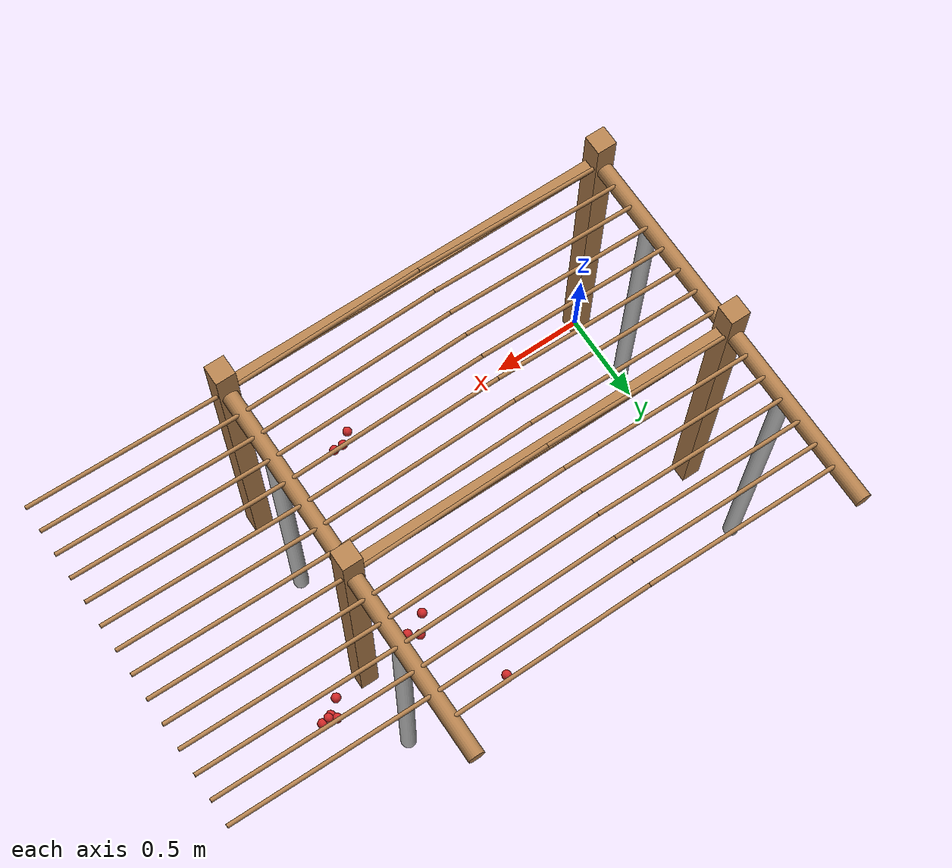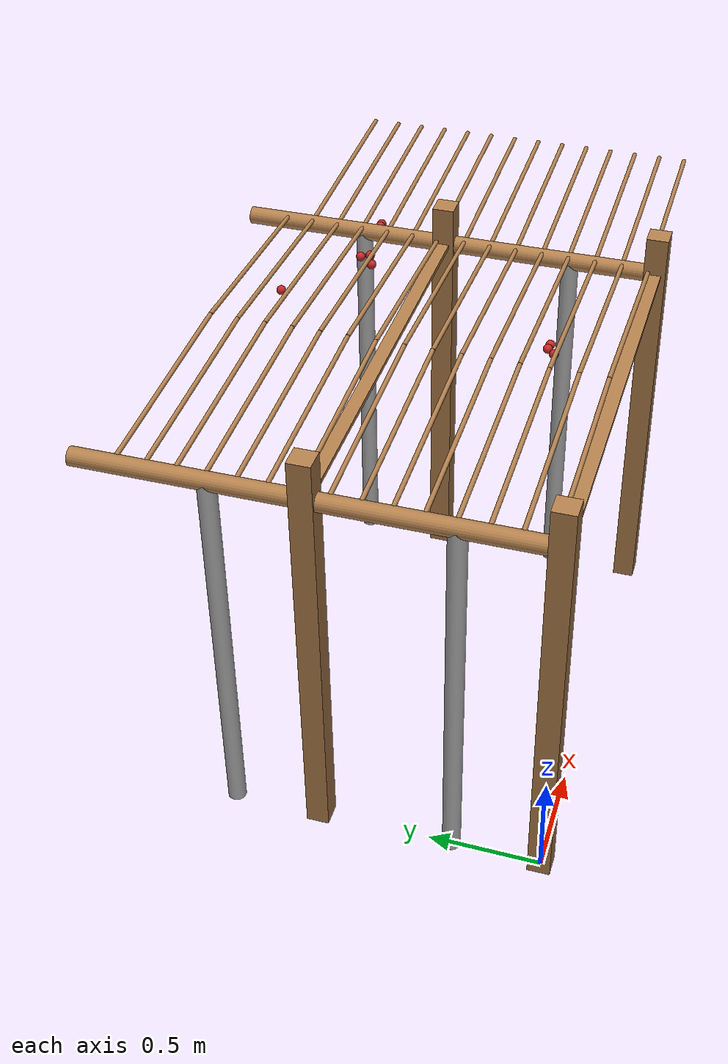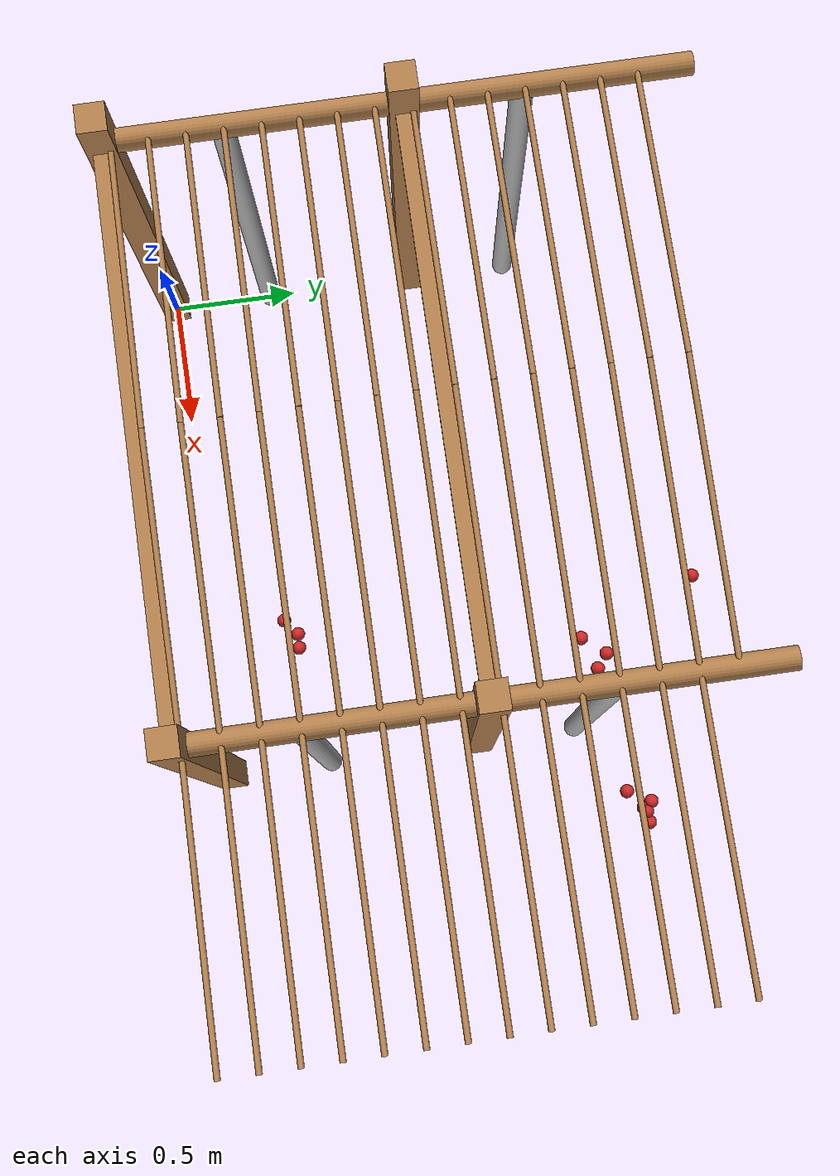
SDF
<sdf version="1.4">
 <model name="pergola">
  <include><name>post_0</name><uri>model://post</uri></include>
  <include><name>post_1</name><pose>0.0 1.0 0 0 0 0</pose><uri>model://post</uri></include>
  <include><name>post_7</name><pose>2.0 0.0 0 0 0 0</pose><uri>model://post</uri></include>
  <include><name>post_8</name><pose>2.0 1.0 0 0 0 0</pose><uri>model://post</uri></include>
  <link name="beam_0">
   <pose>1.0 0.0 1.81 0 0 0</pose>
   <collision name="collision"><geometry><box><size>2.0 0.06 0.02</size></box></geometry></collision>
   <visual name="visual">
    <geometry><box><size>2.0 0.06 0.02</size></box></geometry>
    <material><script><name>Gazebo/Wood</name></script></material>
   </visual>
   <inertial>
    <mass>5</mass>
    <inertia>
     <ixx>0.0016666666666666668</ixx>
     <ixy>0.0</ixy>
     <ixz>0.0</ixz>
     <iyy>1.6681666666666664</iyy>
     <iyz>0.0</iyz>
     <izz>1.6668333333333332</izz>
    </inertia>
   </inertial>
  </link>
  <link name="beam_1">
   <pose>1.0 1.0 1.81 0 0 0</pose>
   <collision name="collision"><geometry><box><size>2.0 0.06 0.02</size></box></geometry></collision>
   <visual name="visual">
    <geometry><box><size>2.0 0.06 0.02</size></box></geometry>
    <material><script><name>Gazebo/Wood</name></script></material>
   </visual>
   <inertial>
    <mass>5</mass>
    <inertia>
     <ixx>0.0016666666666666668</ixx>
     <ixy>0.0</ixy>
     <ixz>0.0</ixz>
     <iyy>1.6681666666666664</iyy>
     <iyz>0.0</iyz>
     <izz>1.6668333333333332</izz>
    </inertia>
   </inertial>
  </link>
  <include><name>tree_0</name><pose>0.0 0.4 0 0 0 0</pose><uri>model://tree_trunk</uri></include>
  <include><name>tree_1</name><pose>0.0 1.4 0 0 0 0</pose><uri>model://tree_trunk</uri></include>
  <include><name>tree_6</name><pose>2.0 0.4 0 0 0 0</pose><uri>model://tree_trunk</uri></include>
  <include><name>tree_7</name><pose>2.0 1.4 0 0 0 0</pose><uri>model://tree_trunk</uri></include>
  <link name="baseBranch_0">
   <pose>0.0 0.5 1.8 1.5707963267948966 0 0</pose>
   <collision name="collision">
    <geometry><cylinder><radius>0.04</radius><length>0.94</length></cylinder></geometry>
   </collision>
   <visual name="visual">
    <geometry><cylinder><radius>0.04</radius><length>0.94</length></cylinder></geometry>
    <material><script><name>Gazebo/WoodFloor</name></script></material>
   </visual>
   <inertial>
    <mass>10</mass>
    <inertia>
     <ixx>0.7403333333333334</ixx>
     <ixy>0.0</ixy>
     <ixz>0.0</ixz>
     <iyy>0.7403333333333334</iyy>
     <iyz>0.0</iyz>
     <izz>0.008</izz>
    </inertia>
   </inertial>
  </link>
  <link name="baseBranch_1">
   <pose>0.0 1.5 1.8 1.5707963267948966 0 0</pose>
   <collision name="collision">
    <geometry><cylinder><radius>0.04</radius><length>0.94</length></cylinder></geometry>
   </collision>
   <visual name="visual">
    <geometry><cylinder><radius>0.04</radius><length>0.94</length></cylinder></geometry>
    <material><script><name>Gazebo/WoodFloor</name></script></material>
   </visual>
   <inertial>
    <mass>10</mass>
    <inertia>
     <ixx>0.7403333333333334</ixx>
     <ixy>0.0</ixy>
     <ixz>0.0</ixz>
     <iyy>0.7403333333333334</iyy>
     <iyz>0.0</iyz>
     <izz>0.008</izz>
    </inertia>
   </inertial>
  </link>
  <link name="baseBranch_6">
   <pose>2.0 0.5 1.8 1.5707963267948966 0 0</pose>
   <collision name="collision">
    <geometry><cylinder><radius>0.04</radius><length>0.94</length></cylinder></geometry>
   </collision>
   <visual name="visual">
    <geometry><cylinder><radius>0.04</radius><length>0.94</length></cylinder></geometry>
    <material><script><name>Gazebo/WoodFloor</name></script></material>
   </visual>
   <inertial>
    <mass>10</mass>
    <inertia>
     <ixx>0.7403333333333334</ixx>
     <ixy>0.0</ixy>
     <ixz>0.0</ixz>
     <iyy>0.7403333333333334</iyy>
     <iyz>0.0</iyz>
     <izz>0.008</izz>
    </inertia>
   </inertial>
  </link>
  <link name="baseBranch_7">
   <pose>2.0 1.5 1.8 1.5707963267948966 0 0</pose>
   <collision name="collision">
    <geometry><cylinder><radius>0.04</radius><length>0.94</length></cylinder></geometry>
   </collision>
   <visual name="visual">
    <geometry><cylinder><radius>0.04</radius><length>0.94</length></cylinder></geometry>
    <material><script><name>Gazebo/WoodFloor</name></script></material>
   </visual>
   <inertial>
    <mass>10</mass>
    <inertia>
     <ixx>0.7403333333333334</ixx>
     <ixy>0.0</ixy>
     <ixz>0.0</ixz>
     <iyy>0.7403333333333334</iyy>
     <iyz>0.0</iyz>
     <izz>0.008</izz>
    </inertia>
   </inertial>
  </link>
  <link name="vine_0">
   <pose>0.5 0.03 1.85 0 1.5208379310729538 0</pose>
   <collision name="collision">
    <geometry><cylinder><radius>0.01</radius><length>1.0012492197250393</length></cylinder></geometry>
   </collision>
   <visual name="visual">
    <geometry><cylinder><radius>0.01</radius><length>1.0012492197250393</length></cylinder></geometry>
    <material><script><name>Gazebo/WoodFloor</name></script></material>
   </visual>
   <inertial>
    <mass>5</mass>
    <inertia>
     <ixx>0.41783333333333345</ixx>
     <ixy>0.0</ixy>
     <ixz>0.0</ixz>
     <iyy>0.41783333333333345</iyy>
     <iyz>0.0</iyz>
     <izz>0.00025</izz>
    </inertia>
   </inertial>
  </link>
  <link name="vine_1">
   <pose>1.5 0.03 1.85 0 -1.5208379310729538 0</pose>
   <collision name="collision">
    <geometry><cylinder><radius>0.01</radius><length>1.0012492197250393</length></cylinder></geometry>
   </collision>
   <visual name="visual">
    <geometry><cylinder><radius>0.01</radius><length>1.0012492197250393</length></cylinder></geometry>
    <material><script><name>Gazebo/WoodFloor</name></script></material>
   </visual>
   <inertial>
    <mass>5</mass>
    <inertia>
     <ixx>0.41783333333333345</ixx>
     <ixy>0.0</ixy>
     <ixz>0.0</ixz>
     <iyy>0.41783333333333345</iyy>
     <iyz>0.0</iyz>
     <izz>0.00025</izz>
    </inertia>
   </inertial>
  </link>
  <link name="vine_2">
   <pose>0.5 0.155 1.85 0 1.5208379310729538 0</pose>
   <collision name="collision">
    <geometry><cylinder><radius>0.01</radius><length>1.0012492197250393</length></cylinder></geometry>
   </collision>
   <visual name="visual">
    <geometry><cylinder><radius>0.01</radius><length>1.0012492197250393</length></cylinder></geometry>
    <material><script><name>Gazebo/WoodFloor</name></script></material>
   </visual>
   <inertial>
    <mass>5</mass>
    <inertia>
     <ixx>0.41783333333333345</ixx>
     <ixy>0.0</ixy>
     <ixz>0.0</ixz>
     <iyy>0.41783333333333345</iyy>
     <iyz>0.0</iyz>
     <izz>0.00025</izz>
    </inertia>
   </inertial>
  </link>
  <link name="vine_3">
   <pose>1.5 0.155 1.85 0 -1.5208379310729538 0</pose>
   <collision name="collision">
    <geometry><cylinder><radius>0.01</radius><length>1.0012492197250393</length></cylinder></geometry>
   </collision>
   <visual name="visual">
    <geometry><cylinder><radius>0.01</radius><length>1.0012492197250393</length></cylinder></geometry>
    <material><script><name>Gazebo/WoodFloor</name></script></material>
   </visual>
   <inertial>
    <mass>5</mass>
    <inertia>
     <ixx>0.41783333333333345</ixx>
     <ixy>0.0</ixy>
     <ixz>0.0</ixz>
     <iyy>0.41783333333333345</iyy>
     <iyz>0.0</iyz>
     <izz>0.00025</izz>
    </inertia>
   </inertial>
  </link>
  <link name="vine_4">
   <pose>0.5 0.28 1.85 0 1.5208379310729538 0</pose>
   <collision name="collision">
    <geometry><cylinder><radius>0.01</radius><length>1.0012492197250393</length></cylinder></geometry>
   </collision>
   <visual name="visual">
    <geometry><cylinder><radius>0.01</radius><length>1.0012492197250393</length></cylinder></geometry>
    <material><script><name>Gazebo/WoodFloor</name></script></material>
   </visual>
   <inertial>
    <mass>5</mass>
    <inertia>
     <ixx>0.41783333333333345</ixx>
     <ixy>0.0</ixy>
     <ixz>0.0</ixz>
     <iyy>0.41783333333333345</iyy>
     <iyz>0.0</iyz>
     <izz>0.00025</izz>
    </inertia>
   </inertial>
  </link>
  <link name="vine_5">
   <pose>1.5 0.28 1.85 0 -1.5208379310729538 0</pose>
   <collision name="collision">
    <geometry><cylinder><radius>0.01</radius><length>1.0012492197250393</length></cylinder></geometry>
   </collision>
   <visual name="visual">
    <geometry><cylinder><radius>0.01</radius><length>1.0012492197250393</length></cylinder></geometry>
    <material><script><name>Gazebo/WoodFloor</name></script></material>
   </visual>
   <inertial>
    <mass>5</mass>
    <inertia>
     <ixx>0.41783333333333345</ixx>
     <ixy>0.0</ixy>
     <ixz>0.0</ixz>
     <iyy>0.41783333333333345</iyy>
     <iyz>0.0</iyz>
     <izz>0.00025</izz>
    </inertia>
   </inertial>
  </link>
  <link name="vine_6">
   <pose>0.5 0.405 1.85 0 1.5208379310729538 0</pose>
   <collision name="collision">
    <geometry><cylinder><radius>0.01</radius><length>1.0012492197250393</length></cylinder></geometry>
   </collision>
   <visual name="visual">
    <geometry><cylinder><radius>0.01</radius><length>1.0012492197250393</length></cylinder></geometry>
    <material><script><name>Gazebo/WoodFloor</name></script></material>
   </visual>
   <inertial>
    <mass>5</mass>
    <inertia>
     <ixx>0.41783333333333345</ixx>
     <ixy>0.0</ixy>
     <ixz>0.0</ixz>
     <iyy>0.41783333333333345</iyy>
     <iyz>0.0</iyz>
     <izz>0.00025</izz>
    </inertia>
   </inertial>
  </link>
  <link name="vine_7">
   <pose>1.5 0.405 1.85 0 -1.5208379310729538 0</pose>
   <collision name="collision">
    <geometry><cylinder><radius>0.01</radius><length>1.0012492197250393</length></cylinder></geometry>
   </collision>
   <visual name="visual">
    <geometry><cylinder><radius>0.01</radius><length>1.0012492197250393</length></cylinder></geometry>
    <material><script><name>Gazebo/WoodFloor</name></script></material>
   </visual>
   <inertial>
    <mass>5</mass>
    <inertia>
     <ixx>0.41783333333333345</ixx>
     <ixy>0.0</ixy>
     <ixz>0.0</ixz>
     <iyy>0.41783333333333345</iyy>
     <iyz>0.0</iyz>
     <izz>0.00025</izz>
    </inertia>
   </inertial>
  </link>
  <link name="vine_8">
   <pose>0.5 0.53 1.85 0 1.5208379310729538 0</pose>
   <collision name="collision">
    <geometry><cylinder><radius>0.01</radius><length>1.0012492197250393</length></cylinder></geometry>
   </collision>
   <visual name="visual">
    <geometry><cylinder><radius>0.01</radius><length>1.0012492197250393</length></cylinder></geometry>
    <material><script><name>Gazebo/WoodFloor</name></script></material>
   </visual>
   <inertial>
    <mass>5</mass>
    <inertia>
     <ixx>0.41783333333333345</ixx>
     <ixy>0.0</ixy>
     <ixz>0.0</ixz>
     <iyy>0.41783333333333345</iyy>
     <iyz>0.0</iyz>
     <izz>0.00025</izz>
    </inertia>
   </inertial>
  </link>
  <link name="vine_9">
   <pose>1.5 0.53 1.85 0 -1.5208379310729538 0</pose>
   <collision name="collision">
    <geometry><cylinder><radius>0.01</radius><length>1.0012492197250393</length></cylinder></geometry>
   </collision>
   <visual name="visual">
    <geometry><cylinder><radius>0.01</radius><length>1.0012492197250393</length></cylinder></geometry>
    <material><script><name>Gazebo/WoodFloor</name></script></material>
   </visual>
   <inertial>
    <mass>5</mass>
    <inertia>
     <ixx>0.41783333333333345</ixx>
     <ixy>0.0</ixy>
     <ixz>0.0</ixz>
     <iyy>0.41783333333333345</iyy>
     <iyz>0.0</iyz>
     <izz>0.00025</izz>
    </inertia>
   </inertial>
  </link>
  <link name="vine_10">
   <pose>0.5 0.655 1.85 0 1.5208379310729538 0</pose>
   <collision name="collision">
    <geometry><cylinder><radius>0.01</radius><length>1.0012492197250393</length></cylinder></geometry>
   </collision>
   <visual name="visual">
    <geometry><cylinder><radius>0.01</radius><length>1.0012492197250393</length></cylinder></geometry>
    <material><script><name>Gazebo/WoodFloor</name></script></material>
   </visual>
   <inertial>
    <mass>5</mass>
    <inertia>
     <ixx>0.41783333333333345</ixx>
     <ixy>0.0</ixy>
     <ixz>0.0</ixz>
     <iyy>0.41783333333333345</iyy>
     <iyz>0.0</iyz>
     <izz>0.00025</izz>
    </inertia>
   </inertial>
  </link>
  <link name="vine_11">
   <pose>1.5 0.655 1.85 0 -1.5208379310729538 0</pose>
   <collision name="collision">
    <geometry><cylinder><radius>0.01</radius><length>1.0012492197250393</length></cylinder></geometry>
   </collision>
   <visual name="visual">
    <geometry><cylinder><radius>0.01</radius><length>1.0012492197250393</length></cylinder></geometry>
    <material><script><name>Gazebo/WoodFloor</name></script></material>
   </visual>
   <inertial>
    <mass>5</mass>
    <inertia>
     <ixx>0.41783333333333345</ixx>
     <ixy>0.0</ixy>
     <ixz>0.0</ixz>
     <iyy>0.41783333333333345</iyy>
     <iyz>0.0</iyz>
     <izz>0.00025</izz>
    </inertia>
   </inertial>
  </link>
  <link name="vine_12">
   <pose>0.5 0.78 1.85 0 1.5208379310729538 0</pose>
   <collision name="collision">
    <geometry><cylinder><radius>0.01</radius><length>1.0012492197250393</length></cylinder></geometry>
   </collision>
   <visual name="visual">
    <geometry><cylinder><radius>0.01</radius><length>1.0012492197250393</length></cylinder></geometry>
    <material><script><name>Gazebo/WoodFloor</name></script></material>
   </visual>
   <inertial>
    <mass>5</mass>
    <inertia>
     <ixx>0.41783333333333345</ixx>
     <ixy>0.0</ixy>
     <ixz>0.0</ixz>
     <iyy>0.41783333333333345</iyy>
     <iyz>0.0</iyz>
     <izz>0.00025</izz>
    </inertia>
   </inertial>
  </link>
  <link name="vine_13">
   <pose>1.5 0.78 1.85 0 -1.5208379310729538 0</pose>
   <collision name="collision">
    <geometry><cylinder><radius>0.01</radius><length>1.0012492197250393</length></cylinder></geometry>
   </collision>
   <visual name="visual">
    <geometry><cylinder><radius>0.01</radius><length>1.0012492197250393</length></cylinder></geometry>
    <material><script><name>Gazebo/WoodFloor</name></script></material>
   </visual>
   <inertial>
    <mass>5</mass>
    <inertia>
     <ixx>0.41783333333333345</ixx>
     <ixy>0.0</ixy>
     <ixz>0.0</ixz>
     <iyy>0.41783333333333345</iyy>
     <iyz>0.0</iyz>
     <izz>0.00025</izz>
    </inertia>
   </inertial>
  </link>
  <link name="vine_14">
   <pose>0.5 0.905 1.85 0 1.5208379310729538 0</pose>
   <collision name="collision">
    <geometry><cylinder><radius>0.01</radius><length>1.0012492197250393</length></cylinder></geometry>
   </collision>
   <visual name="visual">
    <geometry><cylinder><radius>0.01</radius><length>1.0012492197250393</length></cylinder></geometry>
    <material><script><name>Gazebo/WoodFloor</name></script></material>
   </visual>
   <inertial>
    <mass>5</mass>
    <inertia>
     <ixx>0.41783333333333345</ixx>
     <ixy>0.0</ixy>
     <ixz>0.0</ixz>
     <iyy>0.41783333333333345</iyy>
     <iyz>0.0</iyz>
     <izz>0.00025</izz>
    </inertia>
   </inertial>
  </link>
  <link name="vine_15">
   <pose>1.5 0.905 1.85 0 -1.5208379310729538 0</pose>
   <collision name="collision">
    <geometry><cylinder><radius>0.01</radius><length>1.0012492197250393</length></cylinder></geometry>
   </collision>
   <visual name="visual">
    <geometry><cylinder><radius>0.01</radius><length>1.0012492197250393</length></cylinder></geometry>
    <material><script><name>Gazebo/WoodFloor</name></script></material>
   </visual>
   <inertial>
    <mass>5</mass>
    <inertia>
     <ixx>0.41783333333333345</ixx>
     <ixy>0.0</ixy>
     <ixz>0.0</ixz>
     <iyy>0.41783333333333345</iyy>
     <iyz>0.0</iyz>
     <izz>0.00025</izz>
    </inertia>
   </inertial>
  </link>
  <link name="vine_16">
   <pose>0.5 1.03 1.85 0 1.5208379310729538 0</pose>
   <collision name="collision">
    <geometry><cylinder><radius>0.01</radius><length>1.0012492197250393</length></cylinder></geometry>
   </collision>
   <visual name="visual">
    <geometry><cylinder><radius>0.01</radius><length>1.0012492197250393</length></cylinder></geometry>
    <material><script><name>Gazebo/WoodFloor</name></script></material>
   </visual>
   <inertial>
    <mass>5</mass>
    <inertia>
     <ixx>0.41783333333333345</ixx>
     <ixy>0.0</ixy>
     <ixz>0.0</ixz>
     <iyy>0.41783333333333345</iyy>
     <iyz>0.0</iyz>
     <izz>0.00025</izz>
    </inertia>
   </inertial>
  </link>
  <link name="vine_17">
   <pose>1.5 1.03 1.85 0 -1.5208379310729538 0</pose>
   <collision name="collision">
    <geometry><cylinder><radius>0.01</radius><length>1.0012492197250393</length></cylinder></geometry>
   </collision>
   <visual name="visual">
    <geometry><cylinder><radius>0.01</radius><length>1.0012492197250393</length></cylinder></geometry>
    <material><script><name>Gazebo/WoodFloor</name></script></material>
   </visual>
   <inertial>
    <mass>5</mass>
    <inertia>
     <ixx>0.41783333333333345</ixx>
     <ixy>0.0</ixy>
     <ixz>0.0</ixz>
     <iyy>0.41783333333333345</iyy>
     <iyz>0.0</iyz>
     <izz>0.00025</izz>
    </inertia>
   </inertial>
  </link>
  <link name="vine_18">
   <pose>0.5 1.155 1.85 0 1.5208379310729538 0</pose>
   <collision name="collision">
    <geometry><cylinder><radius>0.01</radius><length>1.0012492197250393</length></cylinder></geometry>
   </collision>
   <visual name="visual">
    <geometry><cylinder><radius>0.01</radius><length>1.0012492197250393</length></cylinder></geometry>
    <material><script><name>Gazebo/WoodFloor</name></script></material>
   </visual>
   <inertial>
    <mass>5</mass>
    <inertia>
     <ixx>0.41783333333333345</ixx>
     <ixy>0.0</ixy>
     <ixz>0.0</ixz>
     <iyy>0.41783333333333345</iyy>
     <iyz>0.0</iyz>
     <izz>0.00025</izz>
    </inertia>
   </inertial>
  </link>
  <link name="vine_19">
   <pose>1.5 1.155 1.85 0 -1.5208379310729538 0</pose>
   <collision name="collision">
    <geometry><cylinder><radius>0.01</radius><length>1.0012492197250393</length></cylinder></geometry>
   </collision>
   <visual name="visual">
    <geometry><cylinder><radius>0.01</radius><length>1.0012492197250393</length></cylinder></geometry>
    <material><script><name>Gazebo/WoodFloor</name></script></material>
   </visual>
   <inertial>
    <mass>5</mass>
    <inertia>
     <ixx>0.41783333333333345</ixx>
     <ixy>0.0</ixy>
     <ixz>0.0</ixz>
     <iyy>0.41783333333333345</iyy>
     <iyz>0.0</iyz>
     <izz>0.00025</izz>
    </inertia>
   </inertial>
  </link>
  <link name="vine_20">
   <pose>0.5 1.28 1.85 0 1.5208379310729538 0</pose>
   <collision name="collision">
    <geometry><cylinder><radius>0.01</radius><length>1.0012492197250393</length></cylinder></geometry>
   </collision>
   <visual name="visual">
    <geometry><cylinder><radius>0.01</radius><length>1.0012492197250393</length></cylinder></geometry>
    <material><script><name>Gazebo/WoodFloor</name></script></material>
   </visual>
   <inertial>
    <mass>5</mass>
    <inertia>
     <ixx>0.41783333333333345</ixx>
     <ixy>0.0</ixy>
     <ixz>0.0</ixz>
     <iyy>0.41783333333333345</iyy>
     <iyz>0.0</iyz>
     <izz>0.00025</izz>
    </inertia>
   </inertial>
  </link>
  <link name="vine_21">
   <pose>1.5 1.28 1.85 0 -1.5208379310729538 0</pose>
   <collision name="collision">
    <geometry><cylinder><radius>0.01</radius><length>1.0012492197250393</length></cylinder></geometry>
   </collision>
   <visual name="visual">
    <geometry><cylinder><radius>0.01</radius><length>1.0012492197250393</length></cylinder></geometry>
    <material><script><name>Gazebo/WoodFloor</name></script></material>
   </visual>
   <inertial>
    <mass>5</mass>
    <inertia>
     <ixx>0.41783333333333345</ixx>
     <ixy>0.0</ixy>
     <ixz>0.0</ixz>
     <iyy>0.41783333333333345</iyy>
     <iyz>0.0</iyz>
     <izz>0.00025</izz>
    </inertia>
   </inertial>
  </link>
  <link name="vine_22">
   <pose>0.5 1.405 1.85 0 1.5208379310729538 0</pose>
   <collision name="collision">
    <geometry><cylinder><radius>0.01</radius><length>1.0012492197250393</length></cylinder></geometry>
   </collision>
   <visual name="visual">
    <geometry><cylinder><radius>0.01</radius><length>1.0012492197250393</length></cylinder></geometry>
    <material><script><name>Gazebo/WoodFloor</name></script></material>
   </visual>
   <inertial>
    <mass>5</mass>
    <inertia>
     <ixx>0.41783333333333345</ixx>
     <ixy>0.0</ixy>
     <ixz>0.0</ixz>
     <iyy>0.41783333333333345</iyy>
     <iyz>0.0</iyz>
     <izz>0.00025</izz>
    </inertia>
   </inertial>
  </link>
  <link name="vine_23">
   <pose>1.5 1.405 1.85 0 -1.5208379310729538 0</pose>
   <collision name="collision">
    <geometry><cylinder><radius>0.01</radius><length>1.0012492197250393</length></cylinder></geometry>
   </collision>
   <visual name="visual">
    <geometry><cylinder><radius>0.01</radius><length>1.0012492197250393</length></cylinder></geometry>
    <material><script><name>Gazebo/WoodFloor</name></script></material>
   </visual>
   <inertial>
    <mass>5</mass>
    <inertia>
     <ixx>0.41783333333333345</ixx>
     <ixy>0.0</ixy>
     <ixz>0.0</ixz>
     <iyy>0.41783333333333345</iyy>
     <iyz>0.0</iyz>
     <izz>0.00025</izz>
    </inertia>
   </inertial>
  </link>
  <link name="vine_24">
   <pose>0.5 1.53 1.85 0 1.5208379310729538 0</pose>
   <collision name="collision">
    <geometry><cylinder><radius>0.01</radius><length>1.0012492197250393</length></cylinder></geometry>
   </collision>
   <visual name="visual">
    <geometry><cylinder><radius>0.01</radius><length>1.0012492197250393</length></cylinder></geometry>
    <material><script><name>Gazebo/WoodFloor</name></script></material>
   </visual>
   <inertial>
    <mass>5</mass>
    <inertia>
     <ixx>0.41783333333333345</ixx>
     <ixy>0.0</ixy>
     <ixz>0.0</ixz>
     <iyy>0.41783333333333345</iyy>
     <iyz>0.0</iyz>
     <izz>0.00025</izz>
    </inertia>
   </inertial>
  </link>
  <link name="vine_25">
   <pose>1.5 1.53 1.85 0 -1.5208379310729538 0</pose>
   <collision name="collision">
    <geometry><cylinder><radius>0.01</radius><length>1.0012492197250393</length></cylinder></geometry>
   </collision>
   <visual name="visual">
    <geometry><cylinder><radius>0.01</radius><length>1.0012492197250393</length></cylinder></geometry>
    <material><script><name>Gazebo/WoodFloor</name></script></material>
   </visual>
   <inertial>
    <mass>5</mass>
    <inertia>
     <ixx>0.41783333333333345</ixx>
     <ixy>0.0</ixy>
     <ixz>0.0</ixz>
     <iyy>0.41783333333333345</iyy>
     <iyz>0.0</iyz>
     <izz>0.00025</izz>
    </inertia>
   </inertial>
  </link>
  <link name="vine_26">
   <pose>0.5 1.655 1.85 0 1.5208379310729538 0</pose>
   <collision name="collision">
    <geometry><cylinder><radius>0.01</radius><length>1.0012492197250393</length></cylinder></geometry>
   </collision>
   <visual name="visual">
    <geometry><cylinder><radius>0.01</radius><length>1.0012492197250393</length></cylinder></geometry>
    <material><script><name>Gazebo/WoodFloor</name></script></material>
   </visual>
   <inertial>
    <mass>5</mass>
    <inertia>
     <ixx>0.41783333333333345</ixx>
     <ixy>0.0</ixy>
     <ixz>0.0</ixz>
     <iyy>0.41783333333333345</iyy>
     <iyz>0.0</iyz>
     <izz>0.00025</izz>
    </inertia>
   </inertial>
  </link>
  <link name="vine_27">
   <pose>1.5 1.655 1.85 0 -1.5208379310729538 0</pose>
   <collision name="collision">
    <geometry><cylinder><radius>0.01</radius><length>1.0012492197250393</length></cylinder></geometry>
   </collision>
   <visual name="visual">
    <geometry><cylinder><radius>0.01</radius><length>1.0012492197250393</length></cylinder></geometry>
    <material><script><name>Gazebo/WoodFloor</name></script></material>
   </visual>
   <inertial>
    <mass>5</mass>
    <inertia>
     <ixx>0.41783333333333345</ixx>
     <ixy>0.0</ixy>
     <ixz>0.0</ixz>
     <iyy>0.41783333333333345</iyy>
     <iyz>0.0</iyz>
     <izz>0.00025</izz>
    </inertia>
   </inertial>
  </link>
  <link name="vine_28">
   <pose>0.5 1.78 1.85 0 1.5208379310729538 0</pose>
   <collision name="collision">
    <geometry><cylinder><radius>0.01</radius><length>1.0012492197250393</length></cylinder></geometry>
   </collision>
   <visual name="visual">
    <geometry><cylinder><radius>0.01</radius><length>1.0012492197250393</length></cylinder></geometry>
    <material><script><name>Gazebo/WoodFloor</name></script></material>
   </visual>
   <inertial>
    <mass>5</mass>
    <inertia>
     <ixx>0.41783333333333345</ixx>
     <ixy>0.0</ixy>
     <ixz>0.0</ixz>
     <iyy>0.41783333333333345</iyy>
     <iyz>0.0</iyz>
     <izz>0.00025</izz>
    </inertia>
   </inertial>
  </link>
  <link name="vine_29">
   <pose>1.5 1.78 1.85 0 -1.5208379310729538 0</pose>
   <collision name="collision">
    <geometry><cylinder><radius>0.01</radius><length>1.0012492197250393</length></cylinder></geometry>
   </collision>
   <visual name="visual">
    <geometry><cylinder><radius>0.01</radius><length>1.0012492197250393</length></cylinder></geometry>
    <material><script><name>Gazebo/WoodFloor</name></script></material>
   </visual>
   <inertial>
    <mass>5</mass>
    <inertia>
     <ixx>0.41783333333333345</ixx>
     <ixy>0.0</ixy>
     <ixz>0.0</ixz>
     <iyy>0.41783333333333345</iyy>
     <iyz>0.0</iyz>
     <izz>0.00025</izz>
    </inertia>
   </inertial>
  </link>
  <link name="vine_96">
   <pose>2.5 0.03 1.85 0 1.5208379310729538 0</pose>
   <collision name="collision">
    <geometry><cylinder><radius>0.01</radius><length>1.0012492197250393</length></cylinder></geometry>
   </collision>
   <visual name="visual">
    <geometry><cylinder><radius>0.01</radius><length>1.0012492197250393</length></cylinder></geometry>
    <material><script><name>Gazebo/WoodFloor</name></script></material>
   </visual>
   <inertial>
    <mass>5</mass>
    <inertia>
     <ixx>0.41783333333333345</ixx>
     <ixy>0.0</ixy>
     <ixz>0.0</ixz>
     <iyy>0.41783333333333345</iyy>
     <iyz>0.0</iyz>
     <izz>0.00025</izz>
    </inertia>
   </inertial>
  </link>
  <link name="vine_98">
   <pose>2.5 0.155 1.85 0 1.5208379310729538 0</pose>
   <collision name="collision">
    <geometry><cylinder><radius>0.01</radius><length>1.0012492197250393</length></cylinder></geometry>
   </collision>
   <visual name="visual">
    <geometry><cylinder><radius>0.01</radius><length>1.0012492197250393</length></cylinder></geometry>
    <material><script><name>Gazebo/WoodFloor</name></script></material>
   </visual>
   <inertial>
    <mass>5</mass>
    <inertia>
     <ixx>0.41783333333333345</ixx>
     <ixy>0.0</ixy>
     <ixz>0.0</ixz>
     <iyy>0.41783333333333345</iyy>
     <iyz>0.0</iyz>
     <izz>0.00025</izz>
    </inertia>
   </inertial>
  </link>
  <link name="vine_100">
   <pose>2.5 0.28 1.85 0 1.5208379310729538 0</pose>
   <collision name="collision">
    <geometry><cylinder><radius>0.01</radius><length>1.0012492197250393</length></cylinder></geometry>
   </collision>
   <visual name="visual">
    <geometry><cylinder><radius>0.01</radius><length>1.0012492197250393</length></cylinder></geometry>
    <material><script><name>Gazebo/WoodFloor</name></script></material>
   </visual>
   <inertial>
    <mass>5</mass>
    <inertia>
     <ixx>0.41783333333333345</ixx>
     <ixy>0.0</ixy>
     <ixz>0.0</ixz>
     <iyy>0.41783333333333345</iyy>
     <iyz>0.0</iyz>
     <izz>0.00025</izz>
    </inertia>
   </inertial>
  </link>
  <link name="vine_102">
   <pose>2.5 0.405 1.85 0 1.5208379310729538 0</pose>
   <collision name="collision">
    <geometry><cylinder><radius>0.01</radius><length>1.0012492197250393</length></cylinder></geometry>
   </collision>
   <visual name="visual">
    <geometry><cylinder><radius>0.01</radius><length>1.0012492197250393</length></cylinder></geometry>
    <material><script><name>Gazebo/WoodFloor</name></script></material>
   </visual>
   <inertial>
    <mass>5</mass>
    <inertia>
     <ixx>0.41783333333333345</ixx>
     <ixy>0.0</ixy>
     <ixz>0.0</ixz>
     <iyy>0.41783333333333345</iyy>
     <iyz>0.0</iyz>
     <izz>0.00025</izz>
    </inertia>
   </inertial>
  </link>
  <link name="vine_104">
   <pose>2.5 0.53 1.85 0 1.5208379310729538 0</pose>
   <collision name="collision">
    <geometry><cylinder><radius>0.01</radius><length>1.0012492197250393</length></cylinder></geometry>
   </collision>
   <visual name="visual">
    <geometry><cylinder><radius>0.01</radius><length>1.0012492197250393</length></cylinder></geometry>
    <material><script><name>Gazebo/WoodFloor</name></script></material>
   </visual>
   <inertial>
    <mass>5</mass>
    <inertia>
     <ixx>0.41783333333333345</ixx>
     <ixy>0.0</ixy>
     <ixz>0.0</ixz>
     <iyy>0.41783333333333345</iyy>
     <iyz>0.0</iyz>
     <izz>0.00025</izz>
    </inertia>
   </inertial>
  </link>
  <link name="vine_106">
   <pose>2.5 0.655 1.85 0 1.5208379310729538 0</pose>
   <collision name="collision">
    <geometry><cylinder><radius>0.01</radius><length>1.0012492197250393</length></cylinder></geometry>
   </collision>
   <visual name="visual">
    <geometry><cylinder><radius>0.01</radius><length>1.0012492197250393</length></cylinder></geometry>
    <material><script><name>Gazebo/WoodFloor</name></script></material>
   </visual>
   <inertial>
    <mass>5</mass>
    <inertia>
     <ixx>0.41783333333333345</ixx>
     <ixy>0.0</ixy>
     <ixz>0.0</ixz>
     <iyy>0.41783333333333345</iyy>
     <iyz>0.0</iyz>
     <izz>0.00025</izz>
    </inertia>
   </inertial>
  </link>
  <link name="vine_108">
   <pose>2.5 0.78 1.85 0 1.5208379310729538 0</pose>
   <collision name="collision">
    <geometry><cylinder><radius>0.01</radius><length>1.0012492197250393</length></cylinder></geometry>
   </collision>
   <visual name="visual">
    <geometry><cylinder><radius>0.01</radius><length>1.0012492197250393</length></cylinder></geometry>
    <material><script><name>Gazebo/WoodFloor</name></script></material>
   </visual>
   <inertial>
    <mass>5</mass>
    <inertia>
     <ixx>0.41783333333333345</ixx>
     <ixy>0.0</ixy>
     <ixz>0.0</ixz>
     <iyy>0.41783333333333345</iyy>
     <iyz>0.0</iyz>
     <izz>0.00025</izz>
    </inertia>
   </inertial>
  </link>
  <link name="vine_110">
   <pose>2.5 0.905 1.85 0 1.5208379310729538 0</pose>
   <collision name="collision">
    <geometry><cylinder><radius>0.01</radius><length>1.0012492197250393</length></cylinder></geometry>
   </collision>
   <visual name="visual">
    <geometry><cylinder><radius>0.01</radius><length>1.0012492197250393</length></cylinder></geometry>
    <material><script><name>Gazebo/WoodFloor</name></script></material>
   </visual>
   <inertial>
    <mass>5</mass>
    <inertia>
     <ixx>0.41783333333333345</ixx>
     <ixy>0.0</ixy>
     <ixz>0.0</ixz>
     <iyy>0.41783333333333345</iyy>
     <iyz>0.0</iyz>
     <izz>0.00025</izz>
    </inertia>
   </inertial>
  </link>
  <link name="vine_112">
   <pose>2.5 1.03 1.85 0 1.5208379310729538 0</pose>
   <collision name="collision">
    <geometry><cylinder><radius>0.01</radius><length>1.0012492197250393</length></cylinder></geometry>
   </collision>
   <visual name="visual">
    <geometry><cylinder><radius>0.01</radius><length>1.0012492197250393</length></cylinder></geometry>
    <material><script><name>Gazebo/WoodFloor</name></script></material>
   </visual>
   <inertial>
    <mass>5</mass>
    <inertia>
     <ixx>0.41783333333333345</ixx>
     <ixy>0.0</ixy>
     <ixz>0.0</ixz>
     <iyy>0.41783333333333345</iyy>
     <iyz>0.0</iyz>
     <izz>0.00025</izz>
    </inertia>
   </inertial>
  </link>
  <link name="vine_114">
   <pose>2.5 1.155 1.85 0 1.5208379310729538 0</pose>
   <collision name="collision">
    <geometry><cylinder><radius>0.01</radius><length>1.0012492197250393</length></cylinder></geometry>
   </collision>
   <visual name="visual">
    <geometry><cylinder><radius>0.01</radius><length>1.0012492197250393</length></cylinder></geometry>
    <material><script><name>Gazebo/WoodFloor</name></script></material>
   </visual>
   <inertial>
    <mass>5</mass>
    <inertia>
     <ixx>0.41783333333333345</ixx>
     <ixy>0.0</ixy>
     <ixz>0.0</ixz>
     <iyy>0.41783333333333345</iyy>
     <iyz>0.0</iyz>
     <izz>0.00025</izz>
    </inertia>
   </inertial>
  </link>
  <link name="vine_116">
   <pose>2.5 1.28 1.85 0 1.5208379310729538 0</pose>
   <collision name="collision">
    <geometry><cylinder><radius>0.01</radius><length>1.0012492197250393</length></cylinder></geometry>
   </collision>
   <visual name="visual">
    <geometry><cylinder><radius>0.01</radius><length>1.0012492197250393</length></cylinder></geometry>
    <material><script><name>Gazebo/WoodFloor</name></script></material>
   </visual>
   <inertial>
    <mass>5</mass>
    <inertia>
     <ixx>0.41783333333333345</ixx>
     <ixy>0.0</ixy>
     <ixz>0.0</ixz>
     <iyy>0.41783333333333345</iyy>
     <iyz>0.0</iyz>
     <izz>0.00025</izz>
    </inertia>
   </inertial>
  </link>
  <link name="vine_118">
   <pose>2.5 1.405 1.85 0 1.5208379310729538 0</pose>
   <collision name="collision">
    <geometry><cylinder><radius>0.01</radius><length>1.0012492197250393</length></cylinder></geometry>
   </collision>
   <visual name="visual">
    <geometry><cylinder><radius>0.01</radius><length>1.0012492197250393</length></cylinder></geometry>
    <material><script><name>Gazebo/WoodFloor</name></script></material>
   </visual>
   <inertial>
    <mass>5</mass>
    <inertia>
     <ixx>0.41783333333333345</ixx>
     <ixy>0.0</ixy>
     <ixz>0.0</ixz>
     <iyy>0.41783333333333345</iyy>
     <iyz>0.0</iyz>
     <izz>0.00025</izz>
    </inertia>
   </inertial>
  </link>
  <link name="vine_120">
   <pose>2.5 1.53 1.85 0 1.5208379310729538 0</pose>
   <collision name="collision">
    <geometry><cylinder><radius>0.01</radius><length>1.0012492197250393</length></cylinder></geometry>
   </collision>
   <visual name="visual">
    <geometry><cylinder><radius>0.01</radius><length>1.0012492197250393</length></cylinder></geometry>
    <material><script><name>Gazebo/WoodFloor</name></script></material>
   </visual>
   <inertial>
    <mass>5</mass>
    <inertia>
     <ixx>0.41783333333333345</ixx>
     <ixy>0.0</ixy>
     <ixz>0.0</ixz>
     <iyy>0.41783333333333345</iyy>
     <iyz>0.0</iyz>
     <izz>0.00025</izz>
    </inertia>
   </inertial>
  </link>
  <link name="vine_122">
   <pose>2.5 1.655 1.85 0 1.5208379310729538 0</pose>
   <collision name="collision">
    <geometry><cylinder><radius>0.01</radius><length>1.0012492197250393</length></cylinder></geometry>
   </collision>
   <visual name="visual">
    <geometry><cylinder><radius>0.01</radius><length>1.0012492197250393</length></cylinder></geometry>
    <material><script><name>Gazebo/WoodFloor</name></script></material>
   </visual>
   <inertial>
    <mass>5</mass>
    <inertia>
     <ixx>0.41783333333333345</ixx>
     <ixy>0.0</ixy>
     <ixz>0.0</ixz>
     <iyy>0.41783333333333345</iyy>
     <iyz>0.0</iyz>
     <izz>0.00025</izz>
    </inertia>
   </inertial>
  </link>
  <link name="fruit_8">
   <pose>1.6714782732303468 1.713778415593365 1.6114560956182726 0 0 0</pose>
   <collision name="fruit_collision_8"><geometry><sphere><radius>0.022</radius></sphere></geometry></collision>
   <visual name="visual">
    <geometry><sphere><radius>0.022</radius></sphere></geometry>
    <material><script><name>Gazebo/Red</name></script></material>
   </visual>
   <inertial>
    <mass>0.05</mass>
    <inertia>
     <ixx>9.679999999999999e-06</ixx>
     <ixy>0.0</ixy>
     <ixz>0.0</ixz>
     <iyy>9.679999999999999e-06</iyy>
     <iyz>0.0</iyz>
     <izz>9.679999999999999e-06</izz>
    </inertia>
   </inertial>
   <sensor name="fruit_contact_8" type="contact">
    <contact><collision>fruit_collision_8</collision></contact>
   </sensor>
  </link>
  <link name="fruit_9">
   <pose>2.3276528780860666 1.3939880015044468 1.6121518616659722 0 0 0</pose>
   <collision name="fruit_collision_9"><geometry><sphere><radius>0.022</radius></sphere></geometry></collision>
   <visual name="visual">
    <geometry><sphere><radius>0.022</radius></sphere></geometry>
    <material><script><name>Gazebo/Red</name></script></material>
   </visual>
   <inertial>
    <mass>0.05</mass>
    <inertia>
     <ixx>9.679999999999999e-06</ixx>
     <ixy>0.0</ixy>
     <ixz>0.0</ixz>
     <iyy>9.679999999999999e-06</iyy>
     <iyz>0.0</iyz>
     <izz>9.679999999999999e-06</izz>
    </inertia>
   </inertial>
   <sensor name="fruit_contact_9" type="contact">
    <contact><collision>fruit_collision_9</collision></contact>
   </sensor>
  </link>
  <link name="fruit_14">
   <pose>1.8352825508777548 1.314212765887287 1.7243966046692822 0 0 0</pose>
   <collision name="fruit_collision_14"><geometry><sphere><radius>0.022</radius></sphere></geometry></collision>
   <visual name="visual">
    <geometry><sphere><radius>0.022</radius></sphere></geometry>
    <material><script><name>Gazebo/Red</name></script></material>
   </visual>
   <inertial>
    <mass>0.05</mass>
    <inertia>
     <ixx>9.679999999999999e-06</ixx>
     <ixy>0.0</ixy>
     <ixz>0.0</ixz>
     <iyy>9.679999999999999e-06</iyy>
     <iyz>0.0</iyz>
     <izz>9.679999999999999e-06</izz>
    </inertia>
   </inertial>
   <sensor name="fruit_contact_14" type="contact">
    <contact><collision>fruit_collision_14</collision></contact>
   </sensor>
  </link>
  <link name="fruit_21">
   <pose>1.6189531926630714 0.3773798169492645 1.5308636632674621 0 0 0</pose>
   <collision name="fruit_collision_21"><geometry><sphere><radius>0.022</radius></sphere></geometry></collision>
   <visual name="visual">
    <geometry><sphere><radius>0.022</radius></sphere></geometry>
    <material><script><name>Gazebo/Red</name></script></material>
   </visual>
   <inertial>
    <mass>0.05</mass>
    <inertia>
     <ixx>9.679999999999999e-06</ixx>
     <ixy>0.0</ixy>
     <ixz>0.0</ixz>
     <iyy>9.679999999999999e-06</iyy>
     <iyz>0.0</iyz>
     <izz>9.679999999999999e-06</izz>
    </inertia>
   </inertial>
   <sensor name="fruit_contact_21" type="contact">
    <contact><collision>fruit_collision_21</collision></contact>
   </sensor>
  </link>
  <link name="fruit_29">
   <pose>1.9366278010435962 1.353264303559 1.7096727143346906 0 0 0</pose>
   <collision name="fruit_collision_29"><geometry><sphere><radius>0.022</radius></sphere></geometry></collision>
   <visual name="visual">
    <geometry><sphere><radius>0.022</radius></sphere></geometry>
    <material><script><name>Gazebo/Red</name></script></material>
   </visual>
   <inertial>
    <mass>0.05</mass>
    <inertia>
     <ixx>9.679999999999999e-06</ixx>
     <ixy>0.0</ixy>
     <ixz>0.0</ixz>
     <iyy>9.679999999999999e-06</iyy>
     <iyz>0.0</iyz>
     <izz>9.679999999999999e-06</izz>
    </inertia>
   </inertial>
   <sensor name="fruit_contact_29" type="contact">
    <contact><collision>fruit_collision_29</collision></contact>
   </sensor>
  </link>
  <link name="fruit_30">
   <pose>2.384935630916869 1.4403319570642568 1.5932640030645895 0 0 0</pose>
   <collision name="fruit_collision_30"><geometry><sphere><radius>0.022</radius></sphere></geometry></collision>
   <visual name="visual">
    <geometry><sphere><radius>0.022</radius></sphere></geometry>
    <material><script><name>Gazebo/Red</name></script></material>
   </visual>
   <inertial>
    <mass>0.05</mass>
    <inertia>
     <ixx>9.679999999999999e-06</ixx>
     <ixy>0.0</ixy>
     <ixz>0.0</ixz>
     <iyy>9.679999999999999e-06</iyy>
     <iyz>0.0</iyz>
     <izz>9.679999999999999e-06</izz>
    </inertia>
   </inertial>
   <sensor name="fruit_contact_30" type="contact">
    <contact><collision>fruit_collision_30</collision></contact>
   </sensor>
  </link>
  <link name="fruit_48">
   <pose>1.6683338903960012 0.4162886049849783 1.5216574257464455 0 0 0</pose>
   <collision name="fruit_collision_48"><geometry><sphere><radius>0.022</radius></sphere></geometry></collision>
   <visual name="visual">
    <geometry><sphere><radius>0.022</radius></sphere></geometry>
    <material><script><name>Gazebo/Red</name></script></material>
   </visual>
   <inertial>
    <mass>0.05</mass>
    <inertia>
     <ixx>9.679999999999999e-06</ixx>
     <ixy>0.0</ixy>
     <ixz>0.0</ixz>
     <iyy>9.679999999999999e-06</iyy>
     <iyz>0.0</iyz>
     <izz>9.679999999999999e-06</izz>
    </inertia>
   </inertial>
   <sensor name="fruit_contact_48" type="contact">
    <contact><collision>fruit_collision_48</collision></contact>
   </sensor>
  </link>
  <link name="fruit_59">
   <pose>2.399204536759109 1.447389686246514 1.6035593912109218 0 0 0</pose>
   <collision name="fruit_collision_59"><geometry><sphere><radius>0.022</radius></sphere></geometry></collision>
   <visual name="visual">
    <geometry><sphere><radius>0.022</radius></sphere></geometry>
    <material><script><name>Gazebo/Red</name></script></material>
   </visual>
   <inertial>
    <mass>0.05</mass>
    <inertia>
     <ixx>9.679999999999999e-06</ixx>
     <ixy>0.0</ixy>
     <ixz>0.0</ixz>
     <iyy>9.679999999999999e-06</iyy>
     <iyz>0.0</iyz>
     <izz>9.679999999999999e-06</izz>
    </inertia>
   </inertial>
   <sensor name="fruit_contact_59" type="contact">
    <contact><collision>fruit_collision_59</collision></contact>
   </sensor>
  </link>
  <link name="fruit_83">
   <pose>2.3691807111591583 1.4673833110472123 1.6001360079785356 0 0 0</pose>
   <collision name="fruit_collision_83"><geometry><sphere><radius>0.022</radius></sphere></geometry></collision>
   <visual name="visual">
    <geometry><sphere><radius>0.022</radius></sphere></geometry>
    <material><script><name>Gazebo/Red</name></script></material>
   </visual>
   <inertial>
    <mass>0.05</mass>
    <inertia>
     <ixx>9.679999999999999e-06</ixx>
     <ixy>0.0</ixy>
     <ixz>0.0</ixz>
     <iyy>9.679999999999999e-06</iyy>
     <iyz>0.0</iyz>
     <izz>9.679999999999999e-06</izz>
    </inertia>
   </inertial>
   <sensor name="fruit_contact_83" type="contact">
    <contact><collision>fruit_collision_83</collision></contact>
   </sensor>
  </link>
  <link name="fruit_87">
   <pose>1.8940619839030037 1.3871906358196169 1.7221804505264438 0 0 0</pose>
   <collision name="fruit_collision_87"><geometry><sphere><radius>0.022</radius></sphere></geometry></collision>
   <visual name="visual">
    <geometry><sphere><radius>0.022</radius></sphere></geometry>
    <material><script><name>Gazebo/Red</name></script></material>
   </visual>
   <inertial>
    <mass>0.05</mass>
    <inertia>
     <ixx>9.679999999999999e-06</ixx>
     <ixy>0.0</ixy>
     <ixz>0.0</ixz>
     <iyy>9.679999999999999e-06</iyy>
     <iyz>0.0</iyz>
     <izz>9.679999999999999e-06</izz>
    </inertia>
   </inertial>
   <sensor name="fruit_contact_87" type="contact">
    <contact><collision>fruit_collision_87</collision></contact>
   </sensor>
  </link>
  <link name="fruit_94">
   <pose>2.433849057781381 1.4517288924528349 1.5965084902546898 0 0 0</pose>
   <collision name="fruit_collision_94"><geometry><sphere><radius>0.022</radius></sphere></geometry></collision>
   <visual name="visual">
    <geometry><sphere><radius>0.022</radius></sphere></geometry>
    <material><script><name>Gazebo/Red</name></script></material>
   </visual>
   <inertial>
    <mass>0.05</mass>
    <inertia>
     <ixx>9.679999999999999e-06</ixx>
     <ixy>0.0</ixy>
     <ixz>0.0</ixz>
     <iyy>9.679999999999999e-06</iyy>
     <iyz>0.0</iyz>
     <izz>9.679999999999999e-06</izz>
    </inertia>
   </inertial>
   <sensor name="fruit_contact_94" type="contact">
    <contact><collision>fruit_collision_94</collision></contact>
   </sensor>
  </link>
  <link name="fruit_97">
   <pose>1.7130244037395332 0.4141880747038489 1.5157144209024973 0 0 0</pose>
   <collision name="fruit_collision_97"><geometry><sphere><radius>0.022</radius></sphere></geometry></collision>
   <visual name="visual">
    <geometry><sphere><radius>0.022</radius></sphere></geometry>
    <material><script><name>Gazebo/Red</name></script></material>
   </visual>
   <inertial>
    <mass>0.05</mass>
    <inertia>
     <ixx>9.679999999999999e-06</ixx>
     <ixy>0.0</ixy>
     <ixz>0.0</ixz>
     <iyy>9.679999999999999e-06</iyy>
     <iyz>0.0</iyz>
     <izz>9.679999999999999e-06</izz>
    </inertia>
   </inertial>
   <sensor name="fruit_contact_97" type="contact">
    <contact><collision>fruit_collision_97</collision></contact>
   </sensor>
  </link>
 </model>
</sdf>
